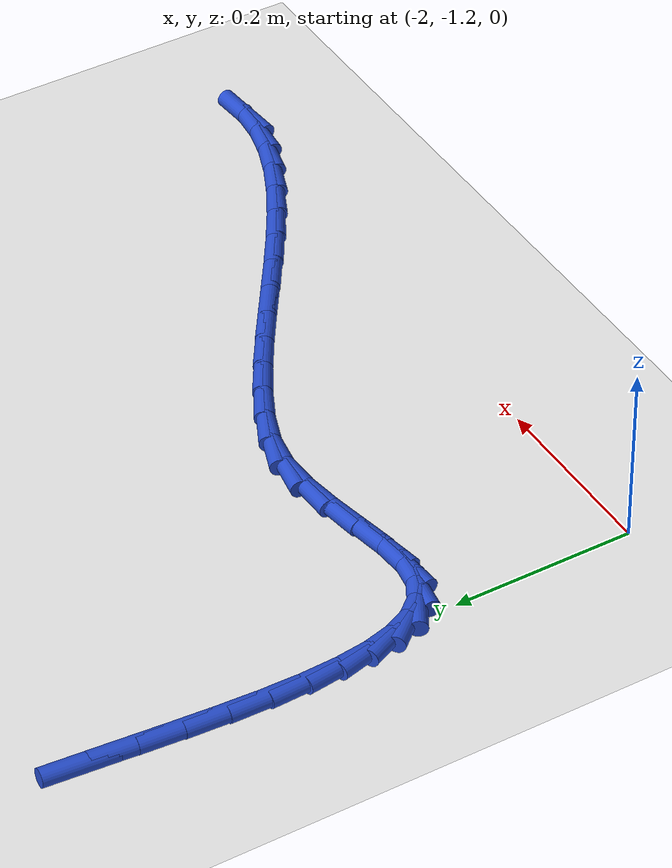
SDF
<sdf version="1.6">
 <world name="default">
  <model name="ground_plane">
   <static>1</static>
   <link name="link">
    <collision name="collision">
     <geometry><plane><normal>0 0 1</normal><size>100 100</size></plane></geometry>
     <surface><friction><ode><mu>100</mu><mu2>50</mu2></ode></friction></surface>
    </collision>
    <visual name="visual">
     <cast_shadows>0</cast_shadows>
     <geometry><plane><normal>0 0 1</normal><size>100 100</size></plane></geometry>
     <material>
      <script><uri>file://media/materials/scripts/gazebo.material</uri><name>Gazebo/WhiteGlow</name></script>
     </material>
    </visual>
   </link>
  </model>
  <model name="line">
   <link name="link_118">
    <pose>-2.0108618493101953 -0.5810303447975118 0.01 0 1.57 1.4878359523143134</pose>
    <collision name="collision">
     <geometry><cylinder><radius>0.01</radius><length>0.08</length></cylinder></geometry>
    </collision>
    <visual name="visual">
     <material>
      <script><name>Gazebo/Blue</name><uri>file://media/materials/scripts/gazebo.material</uri></script>
     </material>
     <geometry><cylinder><radius>0.01</radius><length>0.08</length></cylinder></geometry>
    </visual>
   </link>
   <link name="link_119">
    <pose>-2.014921557591813 -0.6298535388422223 0.01 0 1.57 1.4865199621941314</pose>
    <collision name="collision">
     <geometry><cylinder><radius>0.01</radius><length>0.08</length></cylinder></geometry>
    </collision>
    <visual name="visual">
     <material>
      <script><name>Gazebo/Blue</name><uri>file://media/materials/scripts/gazebo.material</uri></script>
     </material>
     <geometry><cylinder><radius>0.01</radius><length>0.08</length></cylinder></geometry>
    </visual>
   </link>
   <link name="link_120">
    <pose>-2.0190183063464455 -0.6783492839780157 0.01 0 1.57 1.4959811198220396</pose>
    <collision name="collision">
     <geometry><cylinder><radius>0.01</radius><length>0.08</length></cylinder></geometry>
    </collision>
    <visual name="visual">
     <material>
      <script><name>Gazebo/Blue</name><uri>file://media/materials/scripts/gazebo.material</uri></script>
     </material>
     <geometry><cylinder><radius>0.01</radius><length>0.08</length></cylinder></geometry>
    </visual>
   </link>
   <link name="link_121">
    <pose>-2.0225731517424785 -0.7257756098985357 0.01 0 1.57 1.5174872077862505</pose>
    <collision name="collision">
     <geometry><cylinder><radius>0.01</radius><length>0.08</length></cylinder></geometry>
    </collision>
    <visual name="visual">
     <material>
      <script><name>Gazebo/Blue</name><uri>file://media/materials/scripts/gazebo.material</uri></script>
     </material>
     <geometry><cylinder><radius>0.01</radius><length>0.08</length></cylinder></geometry>
    </visual>
   </link>
   <link name="link_122">
    <pose>-2.0250071499482956 -0.7713905462974251 0.01 0 1.57 1.5537478091104675</pose>
    <collision name="collision">
     <geometry><cylinder><radius>0.01</radius><length>0.08</length></cylinder></geometry>
    </collision>
    <visual name="visual">
     <material>
      <script><name>Gazebo/Blue</name><uri>file://media/materials/scripts/gazebo.material</uri></script>
     </material>
     <geometry><cylinder><radius>0.01</radius><length>0.08</length></cylinder></geometry>
    </visual>
   </link>
   <link name="link_123">
    <pose>-2.02574135713228 -0.8144521228683272 0.01 0 1.57 -1.5319756726003222</pose>
    <collision name="collision">
     <geometry><cylinder><radius>0.01</radius><length>0.08</length></cylinder></geometry>
    </collision>
    <visual name="visual">
     <material>
      <script><name>Gazebo/Blue</name><uri>file://media/materials/scripts/gazebo.material</uri></script>
     </material>
     <geometry><cylinder><radius>0.01</radius><length>0.08</length></cylinder></geometry>
    </visual>
   </link>
   <link name="link_124">
    <pose>-2.024196829462816 -0.8542183693048854 0.01 0 1.57 -1.4482029970712231</pose>
    <collision name="collision">
     <geometry><cylinder><radius>0.01</radius><length>0.08</length></cylinder></geometry>
    </collision>
    <visual name="visual">
     <material>
      <script><name>Gazebo/Blue</name><uri>file://media/materials/scripts/gazebo.material</uri></script>
     </material>
     <geometry><cylinder><radius>0.01</radius><length>0.08</length></cylinder></geometry>
    </visual>
   </link>
   <link name="link_125">
    <pose>-2.019794623108287 -0.8899473153007421 0.01 0 1.57 -1.3227361795918255</pose>
    <collision name="collision">
     <geometry><cylinder><radius>0.01</radius><length>0.08</length></cylinder></geometry>
    </collision>
    <visual name="visual">
     <material>
      <script><name>Gazebo/Blue</name><uri>file://media/materials/scripts/gazebo.material</uri></script>
     </material>
     <geometry><cylinder><radius>0.01</radius><length>0.08</length></cylinder></geometry>
    </visual>
   </link>
   <link name="link_126">
    <pose>-2.011955794237077 -0.9208969905495414 0.01 0 1.57 -1.1345634568077239</pose>
    <collision name="collision">
     <geometry><cylinder><radius>0.01</radius><length>0.08</length></cylinder></geometry>
    </collision>
    <visual name="visual">
     <material>
      <script><name>Gazebo/Blue</name><uri>file://media/materials/scripts/gazebo.material</uri></script>
     </material>
     <geometry><cylinder><radius>0.01</radius><length>0.08</length></cylinder></geometry>
    </visual>
   </link>
   <link name="link_127">
    <pose>-2.000101399017569 -0.946325424744926 0.01 0 1.57 -0.8615215652271184</pose>
    <collision name="collision">
     <geometry><cylinder><radius>0.01</radius><length>0.08</length></cylinder></geometry>
    </collision>
    <visual name="visual">
     <material>
      <script><name>Gazebo/Blue</name><uri>file://media/materials/scripts/gazebo.material</uri></script>
     </material>
     <geometry><cylinder><radius>0.01</radius><length>0.08</length></cylinder></geometry>
    </visual>
   </link>
   <link name="link_128">
    <pose>-1.9836524936181483 -0.9654906475805389 0.01 0 1.57 -0.5123003602797519</pose>
    <collision name="collision">
     <geometry><cylinder><radius>0.01</radius><length>0.08</length></cylinder></geometry>
    </collision>
    <visual name="visual">
     <material>
      <script><name>Gazebo/Blue</name><uri>file://media/materials/scripts/gazebo.material</uri></script>
     </material>
     <geometry><cylinder><radius>0.01</radius><length>0.08</length></cylinder></geometry>
    </visual>
   </link>
   <link name="link_129">
    <pose>-1.9620301342071973 -0.9776506887500234 0.01 0 1.57 -0.16108596216970736</pose>
    <collision name="collision">
     <geometry><cylinder><radius>0.01</radius><length>0.08</length></cylinder></geometry>
    </collision>
    <visual name="visual">
     <material>
      <script><name>Gazebo/Blue</name><uri>file://media/materials/scripts/gazebo.material</uri></script>
     </material>
     <geometry><cylinder><radius>0.01</radius><length>0.08</length></cylinder></geometry>
    </visual>
   </link>
   <link name="link_130">
    <pose>-1.9346743420399233 -0.982095838126634 0.01 0 1.57 0.07621919030994541</pose>
    <collision name="collision">
     <geometry><cylinder><radius>0.01</radius><length>0.08</length></cylinder></geometry>
    </collision>
    <visual name="visual">
     <material>
      <script><name>Gazebo/Blue</name><uri>file://media/materials/scripts/gazebo.material</uri></script>
     </material>
     <geometry><cylinder><radius>0.01</radius><length>0.08</length></cylinder></geometry>
    </visual>
   </link>
   <link name="link_131">
    <pose>-1.901892862734258 -0.9795924106636511 0.01 0 1.57 0.17874610893313314</pose>
    <collision name="collision">
     <geometry><cylinder><radius>0.01</radius><length>0.08</length></cylinder></geometry>
    </collision>
    <visual name="visual">
     <material>
      <script><name>Gazebo/Blue</name><uri>file://media/materials/scripts/gazebo.material</uri></script>
     </material>
     <geometry><cylinder><radius>0.01</radius><length>0.08</length></cylinder></geometry>
    </visual>
   </link>
   <link name="link_132">
    <pose>-1.865202523448004 -0.9729634051569482 0.01 0 1.57 0.19691754624586108</pose>
    <collision name="collision">
     <geometry><cylinder><radius>0.01</radius><length>0.08</length></cylinder></geometry>
    </collision>
    <visual name="visual">
     <material>
      <script><name>Gazebo/Blue</name><uri>file://media/materials/scripts/gazebo.material</uri></script>
     </material>
     <geometry><cylinder><radius>0.01</radius><length>0.08</length></cylinder></geometry>
    </visual>
   </link>
   <link name="link_133">
    <pose>-1.8262097518992542 -0.9651842336338965 0.01 0 1.57 0.14890495672890078</pose>
    <collision name="collision">
     <geometry><cylinder><radius>0.01</radius><length>0.08</length></cylinder></geometry>
    </collision>
    <visual name="visual">
     <material>
      <script><name>Gazebo/Blue</name><uri>file://media/materials/scripts/gazebo.material</uri></script>
     </material>
     <geometry><cylinder><radius>0.01</radius><length>0.08</length></cylinder></geometry>
    </visual>
   </link>
   <link name="link_134">
    <pose>-1.7865209758061003 -0.9592303081218672 0.01 0 1.57 0.029731217505597513</pose>
    <collision name="collision">
     <geometry><cylinder><radius>0.01</radius><length>0.08</length></cylinder></geometry>
    </collision>
    <visual name="visual">
     <material>
      <script><name>Gazebo/Blue</name><uri>file://media/materials/scripts/gazebo.material</uri></script>
     </material>
     <geometry><cylinder><radius>0.01</radius><length>0.08</length></cylinder></geometry>
    </visual>
   </link>
   <link name="link_135">
    <pose>-1.747742622886635 -0.9580770406482311 0.01 0 1.57 -0.16941809441943176</pose>
    <collision name="collision">
     <geometry><cylinder><radius>0.01</radius><length>0.08</length></cylinder></geometry>
    </collision>
    <visual name="visual">
     <material>
      <script><name>Gazebo/Blue</name><uri>file://media/materials/scripts/gazebo.material</uri></script>
     </material>
     <geometry><cylinder><radius>0.01</radius><length>0.08</length></cylinder></geometry>
    </visual>
   </link>
   <link name="link_136">
    <pose>-1.7112545415217157 -0.9643186126632441 0.01 0 1.57 -0.35631687493219316</pose>
    <collision name="collision">
     <geometry><cylinder><radius>0.01</radius><length>0.08</length></cylinder></geometry>
    </collision>
    <visual name="visual">
     <material>
      <script><name>Gazebo/Blue</name><uri>file://media/materials/scripts/gazebo.material</uri></script>
     </material>
     <geometry><cylinder><radius>0.01</radius><length>0.08</length></cylinder></geometry>
    </visual>
   </link>
   <link name="link_137">
    <pose>-1.6764822678877824 -0.9772609818159597 0.01 0 1.57 -0.4644444938790089</pose>
    <collision name="collision">
     <geometry><cylinder><radius>0.01</radius><length>0.08</length></cylinder></geometry>
    </collision>
    <visual name="visual">
     <material>
      <script><name>Gazebo/Blue</name><uri>file://media/materials/scripts/gazebo.material</uri></script>
     </material>
     <geometry><cylinder><radius>0.01</radius><length>0.08</length></cylinder></geometry>
    </visual>
   </link>
   <link name="link_138">
    <pose>-1.6419072102148187 -0.9945829648135128 0.01 0 1.57 -0.5240490413627704</pose>
    <collision name="collision">
     <geometry><cylinder><radius>0.01</radius><length>0.08</length></cylinder></geometry>
    </collision>
    <visual name="visual">
     <material>
      <script><name>Gazebo/Blue</name><uri>file://media/materials/scripts/gazebo.material</uri></script>
     </material>
     <geometry><cylinder><radius>0.01</radius><length>0.08</length></cylinder></geometry>
    </visual>
   </link>
   <link name="link_139">
    <pose>-1.606893299858416 -1.014819281604068 0.01 0 1.57 -0.5644834363337887</pose>
    <collision name="collision">
     <geometry><cylinder><radius>0.01</radius><length>0.08</length></cylinder></geometry>
    </collision>
    <visual name="visual">
     <material>
      <script><name>Gazebo/Blue</name><uri>file://media/materials/scripts/gazebo.material</uri></script>
     </material>
     <geometry><cylinder><radius>0.01</radius><length>0.08</length></cylinder></geometry>
    </visual>
   </link>
   <link name="link_140">
    <pose>-1.5715292638835752 -1.0372122455248527 0.01 0 1.57 -0.5894834660106898</pose>
    <collision name="collision">
     <geometry><cylinder><radius>0.01</radius><length>0.08</length></cylinder></geometry>
    </collision>
    <visual name="visual">
     <material>
      <script><name>Gazebo/Blue</name><uri>file://media/materials/scripts/gazebo.material</uri></script>
     </material>
     <geometry><cylinder><radius>0.01</radius><length>0.08</length></cylinder></geometry>
    </visual>
   </link>
   <link name="link_141">
    <pose>-1.5359248887770656 -1.0610247295099946 0.01 0 1.57 -0.6009010297686963</pose>
    <collision name="collision">
     <geometry><cylinder><radius>0.01</radius><length>0.08</length></cylinder></geometry>
    </collision>
    <visual name="visual">
     <material>
      <script><name>Gazebo/Blue</name><uri>file://media/materials/scripts/gazebo.material</uri></script>
     </material>
     <geometry><cylinder><radius>0.01</radius><length>0.08</length></cylinder></geometry>
    </visual>
   </link>
   <link name="link_142">
    <pose>-1.5001899610256537 -1.0855196064936228 0.01 0 1.57 -0.5995875570822919</pose>
    <collision name="collision">
     <geometry><cylinder><radius>0.01</radius><length>0.08</length></cylinder></geometry>
    </collision>
    <visual name="visual">
     <material>
      <script><name>Gazebo/Blue</name><uri>file://media/materials/scripts/gazebo.material</uri></script>
     </material>
     <geometry><cylinder><radius>0.01</radius><length>0.08</length></cylinder></geometry>
    </visual>
   </link>
   <link name="link_143">
    <pose>-1.4644342671161108 -1.1099597494098656 0.01 0 1.57 -0.5854847189579854</pose>
    <collision name="collision">
     <geometry><cylinder><radius>0.01</radius><length>0.08</length></cylinder></geometry>
    </collision>
    <visual name="visual">
     <material>
      <script><name>Gazebo/Blue</name><uri>file://media/materials/scripts/gazebo.material</uri></script>
     </material>
     <geometry><cylinder><radius>0.01</radius><length>0.08</length></cylinder></geometry>
    </visual>
   </link>
   <link name="link_144">
    <pose>-1.4287675935352044 -1.133608031192851 0.01 0 1.57 -0.5576230369591318</pose>
    <collision name="collision">
     <geometry><cylinder><radius>0.01</radius><length>0.08</length></cylinder></geometry>
    </collision>
    <visual name="visual">
     <material>
      <script><name>Gazebo/Blue</name><uri>file://media/materials/scripts/gazebo.material</uri></script>
     </material>
     <geometry><cylinder><radius>0.01</radius><length>0.08</length></cylinder></geometry>
    </visual>
   </link>
   <link name="link_145">
    <pose>-1.3932997267697034 -1.155727324776707 0.01 0 1.57 -0.5140318598314136</pose>
    <collision name="collision">
     <geometry><cylinder><radius>0.01</radius><length>0.08</length></cylinder></geometry>
    </collision>
    <visual name="visual">
     <material>
      <script><name>Gazebo/Blue</name><uri>file://media/materials/scripts/gazebo.material</uri></script>
     </material>
     <geometry><cylinder><radius>0.01</radius><length>0.08</length></cylinder></geometry>
    </visual>
   </link>
   <link name="link_146">
    <pose>-1.3581404533063772 -1.1755805030955628 0.01 0 1.57 -0.4515898021359831</pose>
    <collision name="collision">
     <geometry><cylinder><radius>0.01</radius><length>0.08</length></cylinder></geometry>
    </collision>
    <visual name="visual">
     <material>
      <script><name>Gazebo/Blue</name><uri>file://media/materials/scripts/gazebo.material</uri></script>
     </material>
     <geometry><cylinder><radius>0.01</radius><length>0.08</length></cylinder></geometry>
    </visual>
   </link>
   <link name="link_147">
    <pose>-1.323399559631994 -1.1924304390835456 0.01 0 1.57 -0.3659211308483609</pose>
    <collision name="collision">
     <geometry><cylinder><radius>0.01</radius><length>0.08</length></cylinder></geometry>
    </collision>
    <visual name="visual">
     <material>
      <script><name>Gazebo/Blue</name><uri>file://media/materials/scripts/gazebo.material</uri></script>
     </material>
     <geometry><cylinder><radius>0.01</radius><length>0.08</length></cylinder></geometry>
    </visual>
   </link>
   <link name="link_148">
    <pose>-1.2891868322333226 -1.205540005674784 0.01 0 1.57 -0.2516496484884627</pose>
    <collision name="collision">
     <geometry><cylinder><radius>0.01</radius><length>0.08</length></cylinder></geometry>
    </collision>
    <visual name="visual">
     <material>
      <script><name>Gazebo/Blue</name><uri>file://media/materials/scripts/gazebo.material</uri></script>
     </material>
     <geometry><cylinder><radius>0.01</radius><length>0.08</length></cylinder></geometry>
    </visual>
   </link>
   <link name="link_149">
    <pose>-1.255612057597132 -1.2141720758034065 0.01 0 1.57 -0.10373097615971494</pose>
    <collision name="collision">
     <geometry><cylinder><radius>0.01</radius><length>0.08</length></cylinder></geometry>
    </collision>
    <visual name="visual">
     <material>
      <script><name>Gazebo/Blue</name><uri>file://media/materials/scripts/gazebo.material</uri></script>
     </material>
     <geometry><cylinder><radius>0.01</radius><length>0.08</length></cylinder></geometry>
    </visual>
   </link>
   <link name="link_150">
    <pose>-1.2227850222101906 -1.2175895224035411 0.01 0 1.57 0.07910710276410907</pose>
    <collision name="collision">
     <geometry><cylinder><radius>0.01</radius><length>0.08</length></cylinder></geometry>
    </collision>
    <visual name="visual">
     <material>
      <script><name>Gazebo/Blue</name><uri>file://media/materials/scripts/gazebo.material</uri></script>
     </material>
     <geometry><cylinder><radius>0.01</radius><length>0.08</length></cylinder></geometry>
    </visual>
   </link>
  </model>
 </world>
</sdf>
